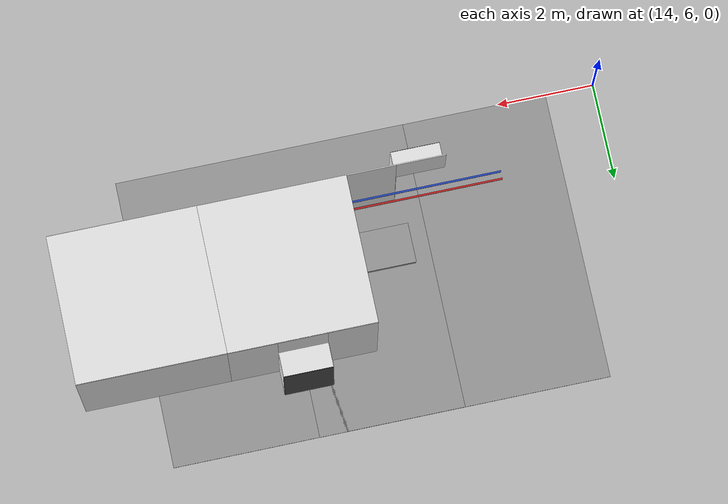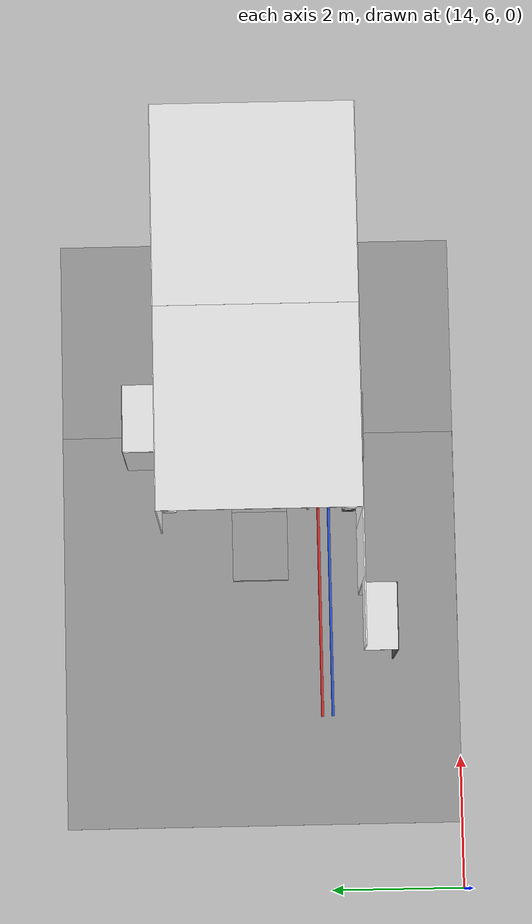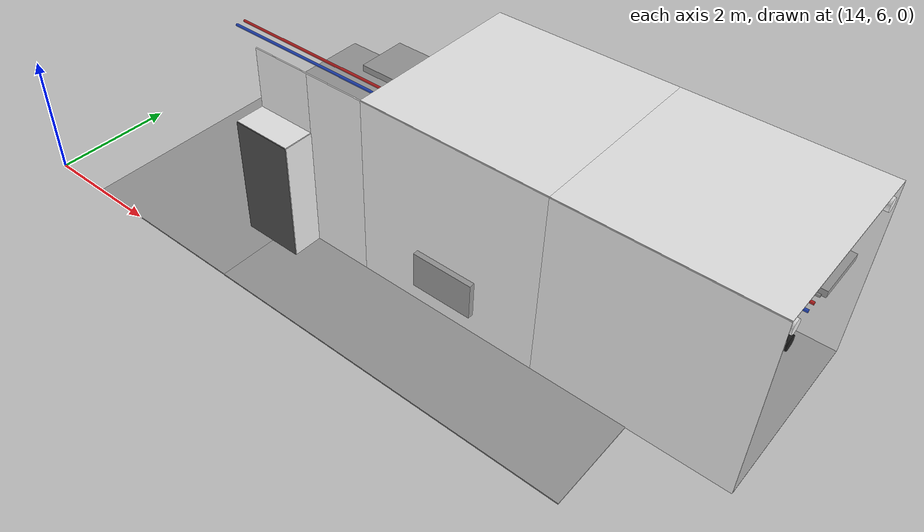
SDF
<sdf version="1.6">
 <world name="default">
  <model name="ceiling_1_6_3_2_1">
   <pose>19.0 9.0 2.55 0.0 0.0 -1.57</pose>
   <link name="link_1">
    <visual name="visual">
     <geometry><box><size>0.8 1 0.1</size></box></geometry>
     <material>
      <script><uri>file://media/materials/scripts/gazebo.material</uri><name>Gazebo/Grey</name></script>
     </material>
    </visual>
    <collision name="collision"><geometry><box><size>0.8 1 0.1</size></box></geometry></collision>
   </link>
   <static>1</static>
  </model>
  <model name="red_pipe_right_6_3_0_1">
   <static>1</static>
   <pose>18.0 9.0 2.76 0.0 0.0 -1.57</pose>
   <link name="link_0">
    <visual name="visual">
     <pose>0.85 0 0 1.57 0 0</pose>
     <geometry><cylinder><radius>0.02</radius><length>3.0</length></cylinder></geometry>
     <material>
      <script><uri>file://media/materials/scripts/gazebo.material</uri><name>Gazebo/Red</name></script>
     </material>
    </visual>
    <collision name="collision">
     <pose>0.85 0 0 1.57 0 0</pose>
     <geometry><cylinder><radius>0.02</radius><length>3.0</length></cylinder></geometry>
    </collision>
   </link>
  </model>
  <model name="blue_pipe_right_6_3_0_1">
   <static>1</static>
   <pose>18.0 9.0 2.76 0.0 0.0 -1.57</pose>
   <link name="link_0">
    <visual name="visual">
     <pose>1 0 0 1.57 0 0</pose>
     <geometry><cylinder><radius>0.02</radius><length>3.0</length></cylinder></geometry>
     <material>
      <script><uri>file://media/materials/scripts/gazebo.material</uri><name>Gazebo/Blue</name></script>
     </material>
    </visual>
    <collision name="collision">
     <pose>1 0 0 1.57 0 0</pose>
     <geometry><cylinder><radius>0.02</radius><length>3.0</length></cylinder></geometry>
    </collision>
   </link>
  </model>
  <model name="wall_right_front_left_6_3_0_1">
   <static>1</static>
   <pose>19.0 7.5 1.5 0.0 0.0 0.0</pose>
   <link name="link">
    <collision name="collision"><geometry><box><size>1.0 0.02 3.0</size></box></geometry></collision>
    <visual name="visual">
     <material>
      <script><name>Gazebo/White</name><uri>file://media/materials/scripts/gazebo.material</uri></script>
     </material>
     <geometry><box><size>1.0 0.02 3.0</size></box></geometry>
    </visual>
   </link>
  </model>
  <model name="wall_right_front_up_6_3_0_1">
   <static>1</static>
   <pose>18.0 7.5 2.5 0.0 0.0 0.0</pose>
   <link name="link">
    <collision name="collision"><geometry><box><size>1.0 0.02 1.0</size></box></geometry></collision>
    <visual name="visual">
     <material>
      <script><name>Gazebo/White</name><uri>file://media/materials/scripts/gazebo.material</uri></script>
     </material>
     <geometry><box><size>1.0 0.02 1.0</size></box></geometry>
    </visual>
   </link>
  </model>
  <model name="wall_right_inside_back_6_3_0_1">
   <static>1</static>
   <pose>18.0 7.0 1.0 0.0 0.0 0.0</pose>
   <link name="link">
    <collision name="collision"><geometry><box><size>1 0.02 2</size></box></geometry></collision>
    <visual name="visual">
     <material>
      <script><name>Gazebo/DarkGrey</name><uri>file://media/materials/scripts/gazebo.material</uri></script>
     </material>
     <geometry><box><size>1 0.02 2</size></box></geometry>
    </visual>
   </link>
  </model>
  <model name="wall_right_inside_left_6_3_0_1">
   <static>1</static>
   <pose>18.5 7.25 1.0 0.0 0.0 -1.57</pose>
   <link name="link">
    <collision name="collision"><geometry><box><size>0.5 0.02 2</size></box></geometry></collision>
    <visual name="visual">
     <material>
      <script><name>Gazebo/White</name><uri>file://media/materials/scripts/gazebo.material</uri></script>
     </material>
     <geometry><box><size>0.5 0.02 2</size></box></geometry>
    </visual>
   </link>
  </model>
  <model name="wall_right_inside_top_6_3_0_1">
   <static>1</static>
   <pose>18.0 7.25 2.0 1.57 0.0 0.0</pose>
   <link name="link">
    <collision name="collision"><geometry><box><size>1 0.02 0.5</size></box></geometry></collision>
    <visual name="visual">
     <material>
      <script><name>Gazebo/White</name><uri>file://media/materials/scripts/gazebo.material</uri></script>
     </material>
     <geometry><box><size>1 0.02 0.5</size></box></geometry>
    </visual>
   </link>
  </model>
  <model name="wall_bottom_6_3_0_1">
   <static>1</static>
   <pose>18.0 9.0 0.0 0.0 0.0 -1.57</pose>
   <link name="link">
    <collision name="collision"><geometry><box><size>6.0 6.0 0.02</size></box></geometry></collision>
    <visual name="visual">
     <material>
      <script><name>Gazebo/Grey</name><uri>file://media/materials/scripts/gazebo.material</uri></script>
     </material>
     <geometry><box><size>6.0 6.0 0.02</size></box></geometry>
    </visual>
   </link>
  </model>
  <model name="wall_right_7_3_0_1">
   <static>1</static>
   <pose>21.0 7.5 1.5 0.0 0.0 0.0</pose>
   <link name="link">
    <collision name="collision"><geometry><box><size>3.0 0.02 3.0</size></box></geometry></collision>
    <visual name="visual">
     <material>
      <script><name>Gazebo/White</name><uri>file://media/materials/scripts/gazebo.material</uri></script>
     </material>
     <geometry><box><size>3.0 0.02 3.0</size></box></geometry>
    </visual>
   </link>
  </model>
  <model name="wall_top_7_3_0_1">
   <static>1</static>
   <pose>21.0 9.0 3.0 1.57 0.0 -1.57</pose>
   <link name="link">
    <collision name="collision"><geometry><box><size>3.0 0.02 3.0</size></box></geometry></collision>
    <visual name="visual">
     <material>
      <script><name>Gazebo/White</name><uri>file://media/materials/scripts/gazebo.material</uri></script>
     </material>
     <geometry><box><size>3.0 0.02 3.0</size></box></geometry>
    </visual>
   </link>
  </model>
  <model name="ceiling_1_7_3_0_1">
   <pose>21.0 9.0 2.55 0.0 0.0 -1.57</pose>
   <link name="link_1">
    <visual name="visual">
     <geometry><box><size>0.8 1 0.1</size></box></geometry>
     <material>
      <script><uri>file://media/materials/scripts/gazebo.material</uri><name>Gazebo/Grey</name></script>
     </material>
    </visual>
    <collision name="collision"><geometry><box><size>0.8 1 0.1</size></box></geometry></collision>
   </link>
   <static>1</static>
  </model>
  <model name="ceiling_1_7_3_1_1">
   <pose>20.0 9.0 2.55 0.0 0.0 -1.57</pose>
   <link name="link_1">
    <visual name="visual">
     <geometry><box><size>0.8 1 0.1</size></box></geometry>
     <material>
      <script><uri>file://media/materials/scripts/gazebo.material</uri><name>Gazebo/Grey</name></script>
     </material>
    </visual>
    <collision name="collision"><geometry><box><size>0.8 1 0.1</size></box></geometry></collision>
   </link>
   <static>1</static>
  </model>
  <model name="ceiling_1_7_3_2_1">
   <pose>22.0 9.0 2.55 0.0 0.0 -1.57</pose>
   <link name="link_1">
    <visual name="visual">
     <geometry><box><size>0.8 1 0.1</size></box></geometry>
     <material>
      <script><uri>file://media/materials/scripts/gazebo.material</uri><name>Gazebo/Grey</name></script>
     </material>
    </visual>
    <collision name="collision"><geometry><box><size>0.8 1 0.1</size></box></geometry></collision>
   </link>
   <static>1</static>
  </model>
  <model name="white_pipe_left_7_3_0_1">
   <static>1</static>
   <pose>21.0 9.0 2.76 0.0 0.0 -1.57</pose>
   <link name="link_0">
    <visual name="visual">
     <pose>-1.3 0 0 1.57 0 0</pose>
     <geometry><cylinder><radius>0.1</radius><length>3.0</length></cylinder></geometry>
     <material>
      <script><uri>file://media/materials/scripts/gazebo.material</uri><name>Gazebo/White</name></script>
     </material>
    </visual>
    <collision name="collision">
     <pose>-1.3 0 0 1.57 0 0</pose>
     <geometry><cylinder><radius>0.1</radius><length>3.0</length></cylinder></geometry>
    </collision>
   </link>
  </model>
  <model name="white_pipe_right_7_3_0_1">
   <static>1</static>
   <pose>21.0 9.0 2.76 0.0 0.0 -1.57</pose>
   <link name="link_0">
    <visual name="visual">
     <pose>1.3 0 0 1.57 0 0</pose>
     <geometry><cylinder><radius>0.1</radius><length>3.0</length></cylinder></geometry>
     <material>
      <script><uri>file://media/materials/scripts/gazebo.material</uri><name>Gazebo/White</name></script>
     </material>
    </visual>
    <collision name="collision">
     <pose>1.3 0 0 1.57 0 0</pose>
     <geometry><cylinder><radius>0.1</radius><length>3.0</length></cylinder></geometry>
    </collision>
   </link>
  </model>
  <model name="black_pipe_right_7_3_0_1">
   <static>1</static>
   <pose>21.0 9.0 2.76 0.0 0.0 -1.57</pose>
   <link name="link_0">
    <visual name="visual">
     <pose>1.3 0 -0.25 1.57 0 0</pose>
     <geometry><cylinder><radius>0.1</radius><length>3.0</length></cylinder></geometry>
     <material>
      <script><uri>file://media/materials/scripts/gazebo.material</uri><name>Gazebo/Black</name></script>
     </material>
    </visual>
    <collision name="collision">
     <pose>1.3 0 -0.25 1.57 0 0</pose>
     <geometry><cylinder><radius>0.1</radius><length>3.0</length></cylinder></geometry>
    </collision>
   </link>
  </model>
  <model name="grey_pipe_right_7_3_0_1">
   <static>1</static>
   <pose>21.0 9.0 2.76 0.0 0.0 -1.57</pose>
   <link name="link_0">
    <visual name="visual">
     <pose>0.7 0 0 1.57 0 0</pose>
     <geometry><cylinder><radius>0.02</radius><length>3.0</length></cylinder></geometry>
     <material>
      <script><uri>file://media/materials/scripts/gazebo.material</uri><name>Gazebo/Grey</name></script>
     </material>
    </visual>
    <collision name="collision">
     <pose>0.7 0 0 1.57 0 0</pose>
     <geometry><cylinder><radius>0.02</radius><length>3.0</length></cylinder></geometry>
    </collision>
   </link>
  </model>
  <model name="red_pipe_right_7_3_0_1">
   <static>1</static>
   <pose>21.0 9.0 2.76 0.0 0.0 -1.57</pose>
   <link name="link_0">
    <visual name="visual">
     <pose>0.85 0 0 1.57 0 0</pose>
     <geometry><cylinder><radius>0.02</radius><length>3.0</length></cylinder></geometry>
     <material>
      <script><uri>file://media/materials/scripts/gazebo.material</uri><name>Gazebo/Red</name></script>
     </material>
    </visual>
    <collision name="collision">
     <pose>0.85 0 0 1.57 0 0</pose>
     <geometry><cylinder><radius>0.02</radius><length>3.0</length></cylinder></geometry>
    </collision>
   </link>
  </model>
  <model name="blue_pipe_right_7_3_0_1">
   <static>1</static>
   <pose>21.0 9.0 2.76 0.0 0.0 -1.57</pose>
   <link name="link_0">
    <visual name="visual">
     <pose>1 0 0 1.57 0 0</pose>
     <geometry><cylinder><radius>0.02</radius><length>3.0</length></cylinder></geometry>
     <material>
      <script><uri>file://media/materials/scripts/gazebo.material</uri><name>Gazebo/Blue</name></script>
     </material>
    </visual>
    <collision name="collision">
     <pose>1 0 0 1.57 0 0</pose>
     <geometry><cylinder><radius>0.02</radius><length>3.0</length></cylinder></geometry>
    </collision>
   </link>
  </model>
  <model name="wall_bottom_7_3_0_1">
   <static>1</static>
   <pose>21.0 9.0 0.0 0.0 0.0 -1.57</pose>
   <link name="link">
    <collision name="collision"><geometry><box><size>6.0 6.0 0.02</size></box></geometry></collision>
    <visual name="visual">
     <material>
      <script><name>Gazebo/Grey</name><uri>file://media/materials/scripts/gazebo.material</uri></script>
     </material>
     <geometry><box><size>6.0 6.0 0.02</size></box></geometry>
    </visual>
   </link>
  </model>
  <model name="wall_left_front_left_7_3_0_1">
   <static>1</static>
   <pose>22.0 10.5 1.5 0.0 0.0 0.0</pose>
   <link name="link">
    <collision name="collision"><geometry><box><size>1.0 0.02 3.0</size></box></geometry></collision>
    <visual name="visual">
     <material>
      <script><name>Gazebo/White</name><uri>file://media/materials/scripts/gazebo.material</uri></script>
     </material>
     <geometry><box><size>1.0 0.02 3.0</size></box></geometry>
    </visual>
   </link>
  </model>
  <model name="wall_left_front_right_7_3_0_1">
   <static>1</static>
   <pose>20.0 10.5 1.5 0.0 0.0 0.0</pose>
   <link name="link">
    <collision name="collision"><geometry><box><size>1.0 0.02 3.0</size></box></geometry></collision>
    <visual name="visual">
     <material>
      <script><name>Gazebo/White</name><uri>file://media/materials/scripts/gazebo.material</uri></script>
     </material>
     <geometry><box><size>1.0 0.02 3.0</size></box></geometry>
    </visual>
   </link>
  </model>
  <model name="wall_left_front_up_7_3_0_1">
   <static>1</static>
   <pose>21.0 10.5 2.5 0.0 0.0 0.0</pose>
   <link name="link">
    <collision name="collision"><geometry><box><size>1.0 0.02 1.0</size></box></geometry></collision>
    <visual name="visual">
     <material>
      <script><name>Gazebo/White</name><uri>file://media/materials/scripts/gazebo.material</uri></script>
     </material>
     <geometry><box><size>1.0 0.02 1.0</size></box></geometry>
    </visual>
   </link>
  </model>
  <model name="wall_left_inside_back_7_3_0_1">
   <static>1</static>
   <pose>21.0 11.0 1.0 0.0 0.0 0.0</pose>
   <link name="link">
    <collision name="collision"><geometry><box><size>1 0.02 2</size></box></geometry></collision>
    <visual name="visual">
     <material>
      <script><name>Gazebo/DarkGrey</name><uri>file://media/materials/scripts/gazebo.material</uri></script>
     </material>
     <geometry><box><size>1 0.02 2</size></box></geometry>
    </visual>
   </link>
  </model>
  <model name="wall_left_inside_left_7_3_0_1">
   <static>1</static>
   <pose>21.5 10.75 1.0 0.0 0.0 -1.57</pose>
   <link name="link">
    <collision name="collision"><geometry><box><size>0.5 0.02 2</size></box></geometry></collision>
    <visual name="visual">
     <material>
      <script><name>Gazebo/White</name><uri>file://media/materials/scripts/gazebo.material</uri></script>
     </material>
     <geometry><box><size>0.5 0.02 2</size></box></geometry>
    </visual>
   </link>
  </model>
  <model name="wall_left_inside_right_7_3_0_1">
   <static>1</static>
   <pose>20.5 10.75 1.0 0.0 0.0 -1.57</pose>
   <link name="link">
    <collision name="collision"><geometry><box><size>0.5 0.02 2</size></box></geometry></collision>
    <visual name="visual">
     <material>
      <script><name>Gazebo/White</name><uri>file://media/materials/scripts/gazebo.material</uri></script>
     </material>
     <geometry><box><size>0.5 0.02 2</size></box></geometry>
    </visual>
   </link>
  </model>
  <model name="wall_left_inside_top_7_3_0_1">
   <static>1</static>
   <pose>21.0 10.75 2.0 1.57 0.0 0.0</pose>
   <link name="link">
    <collision name="collision"><geometry><box><size>1 0.02 0.5</size></box></geometry></collision>
    <visual name="visual">
     <material>
      <script><name>Gazebo/White</name><uri>file://media/materials/scripts/gazebo.material</uri></script>
     </material>
     <geometry><box><size>1 0.02 0.5</size></box></geometry>
    </visual>
   </link>
  </model>
  <model name="panel_7_3_0_1">
   <static>1</static>
   <pose>21.0 7.5 0.66 0.0 0.0 -1.57</pose>
   <link name="link">
    <collision name="collision"><geometry><box><size>0.2 1 0.6</size></box></geometry></collision>
    <visual name="visual">
     <material>
      <script><name>Gazebo/Grey</name><uri>file://media/materials/scripts/gazebo.material</uri></script>
     </material>
     <geometry><box><size>0.2 1 0.6</size></box></geometry>
    </visual>
   </link>
  </model>
  <model name="wall_right_8_3_0_4">
   <static>1</static>
   <pose>24.0 7.5 1.5 0.0 0.0 0.0</pose>
   <link name="link">
    <collision name="collision"><geometry><box><size>3.0 0.02 3.0</size></box></geometry></collision>
    <visual name="visual">
     <material>
      <script><name>Gazebo/White</name><uri>file://media/materials/scripts/gazebo.material</uri></script>
     </material>
     <geometry><box><size>3.0 0.02 3.0</size></box></geometry>
    </visual>
   </link>
  </model>
  <model name="wall_left_8_3_0_4">
   <static>1</static>
   <pose>24.0 10.5 1.5 0.0 0.0 0.0</pose>
   <link name="link">
    <collision name="collision"><geometry><box><size>3.0 0.02 3.0</size></box></geometry></collision>
    <visual name="visual">
     <material>
      <script><name>Gazebo/White</name><uri>file://media/materials/scripts/gazebo.material</uri></script>
     </material>
     <geometry><box><size>3.0 0.02 3.0</size></box></geometry>
    </visual>
   </link>
  </model>
  <model name="wall_top_8_3_0_4">
   <static>1</static>
   <pose>24.0 9.0 3.0 1.57 0.0 -1.57</pose>
   <link name="link">
    <collision name="collision"><geometry><box><size>3.0 0.02 3.0</size></box></geometry></collision>
    <visual name="visual">
     <material>
      <script><name>Gazebo/White</name><uri>file://media/materials/scripts/gazebo.material</uri></script>
     </material>
     <geometry><box><size>3.0 0.02 3.0</size></box></geometry>
    </visual>
   </link>
  </model>
  <model name="ceiling_1_8_3_0_4">
   <pose>24.0 9.0 2.55 0.0 0.0 -1.57</pose>
   <link name="link_1">
    <visual name="visual">
     <geometry><box><size>0.8 1 0.1</size></box></geometry>
     <material>
      <script><uri>file://media/materials/scripts/gazebo.material</uri><name>Gazebo/Grey</name></script>
     </material>
    </visual>
    <collision name="collision"><geometry><box><size>0.8 1 0.1</size></box></geometry></collision>
   </link>
   <static>1</static>
  </model>
  <model name="ceiling_1_8_3_1_4">
   <pose>23.0 9.0 2.55 0.0 0.0 -1.57</pose>
   <link name="link_1">
    <visual name="visual">
     <geometry><box><size>0.8 1 0.1</size></box></geometry>
     <material>
      <script><uri>file://media/materials/scripts/gazebo.material</uri><name>Gazebo/Grey</name></script>
     </material>
    </visual>
    <collision name="collision"><geometry><box><size>0.8 1 0.1</size></box></geometry></collision>
   </link>
   <static>1</static>
  </model>
  <model name="ceiling_1_8_3_2_4">
   <pose>25.0 9.0 2.55 0.0 0.0 -1.57</pose>
   <link name="link_1">
    <visual name="visual">
     <geometry><box><size>0.8 1 0.1</size></box></geometry>
     <material>
      <script><uri>file://media/materials/scripts/gazebo.material</uri><name>Gazebo/Grey</name></script>
     </material>
    </visual>
    <collision name="collision"><geometry><box><size>0.8 1 0.1</size></box></geometry></collision>
   </link>
   <static>1</static>
  </model>
  <model name="white_pipe_left_8_3_0_4">
   <static>1</static>
   <pose>24.0 9.0 2.76 0.0 0.0 -1.57</pose>
   <link name="link_0">
    <visual name="visual">
     <pose>-1.3 0 0 1.57 0 0</pose>
     <geometry><cylinder><radius>0.1</radius><length>3.0</length></cylinder></geometry>
     <material>
      <script><uri>file://media/materials/scripts/gazebo.material</uri><name>Gazebo/White</name></script>
     </material>
    </visual>
    <collision name="collision">
     <pose>-1.3 0 0 1.57 0 0</pose>
     <geometry><cylinder><radius>0.1</radius><length>3.0</length></cylinder></geometry>
    </collision>
   </link>
  </model>
  <model name="white_pipe_right_8_3_0_4">
   <static>1</static>
   <pose>24.0 9.0 2.76 0.0 0.0 -1.57</pose>
   <link name="link_0">
    <visual name="visual">
     <pose>1.3 0 0 1.57 0 0</pose>
     <geometry><cylinder><radius>0.1</radius><length>3.0</length></cylinder></geometry>
     <material>
      <script><uri>file://media/materials/scripts/gazebo.material</uri><name>Gazebo/White</name></script>
     </material>
    </visual>
    <collision name="collision">
     <pose>1.3 0 0 1.57 0 0</pose>
     <geometry><cylinder><radius>0.1</radius><length>3.0</length></cylinder></geometry>
    </collision>
   </link>
  </model>
  <model name="black_pipe_right_8_3_0_4">
   <static>1</static>
   <pose>24.0 9.0 2.76 0.0 0.0 -1.57</pose>
   <link name="link_0">
    <visual name="visual">
     <pose>1.3 0 -0.25 1.57 0 0</pose>
     <geometry><cylinder><radius>0.1</radius><length>3.0</length></cylinder></geometry>
     <material>
      <script><uri>file://media/materials/scripts/gazebo.material</uri><name>Gazebo/Black</name></script>
     </material>
    </visual>
    <collision name="collision">
     <pose>1.3 0 -0.25 1.57 0 0</pose>
     <geometry><cylinder><radius>0.1</radius><length>3.0</length></cylinder></geometry>
    </collision>
   </link>
  </model>
  <model name="grey_pipe_right_8_3_0_4">
   <static>1</static>
   <pose>24.0 9.0 2.76 0.0 0.0 -1.57</pose>
   <link name="link_0">
    <visual name="visual">
     <pose>0.7 0 0 1.57 0 0</pose>
     <geometry><cylinder><radius>0.02</radius><length>3.0</length></cylinder></geometry>
     <material>
      <script><uri>file://media/materials/scripts/gazebo.material</uri><name>Gazebo/Grey</name></script>
     </material>
    </visual>
    <collision name="collision">
     <pose>0.7 0 0 1.57 0 0</pose>
     <geometry><cylinder><radius>0.02</radius><length>3.0</length></cylinder></geometry>
    </collision>
   </link>
  </model>
  <model name="red_pipe_right_8_3_0_4">
   <static>1</static>
   <pose>24.0 9.0 2.76 0.0 0.0 -1.57</pose>
   <link name="link_0">
    <visual name="visual">
     <pose>0.85 0 0 1.57 0 0</pose>
     <geometry><cylinder><radius>0.02</radius><length>3.0</length></cylinder></geometry>
     <material>
      <script><uri>file://media/materials/scripts/gazebo.material</uri><name>Gazebo/Red</name></script>
     </material>
    </visual>
    <collision name="collision">
     <pose>0.85 0 0 1.57 0 0</pose>
     <geometry><cylinder><radius>0.02</radius><length>3.0</length></cylinder></geometry>
    </collision>
   </link>
  </model>
  <model name="blue_pipe_right_8_3_0_4">
   <static>1</static>
   <pose>24.0 9.0 2.76 0.0 0.0 -1.57</pose>
   <link name="link_0">
    <visual name="visual">
     <pose>1 0 0 1.57 0 0</pose>
     <geometry><cylinder><radius>0.02</radius><length>3.0</length></cylinder></geometry>
     <material>
      <script><uri>file://media/materials/scripts/gazebo.material</uri><name>Gazebo/Blue</name></script>
     </material>
    </visual>
    <collision name="collision">
     <pose>1 0 0 1.57 0 0</pose>
     <geometry><cylinder><radius>0.02</radius><length>3.0</length></cylinder></geometry>
    </collision>
   </link>
  </model>
  <model name="wall_bottom_8_3_0_4">
   <static>1</static>
   <pose>24.0 9.0 0.0 0.0 0.0 -1.57</pose>
   <link name="link">
    <collision name="collision"><geometry><box><size>3.0 3.0 0.02</size></box></geometry></collision>
    <visual name="visual">
     <material>
      <script><name>Gazebo/Grey</name><uri>file://media/materials/scripts/gazebo.material</uri></script>
     </material>
     <geometry><box><size>3.0 3.0 0.02</size></box></geometry>
    </visual>
   </link>
  </model>
 </world>
</sdf>
